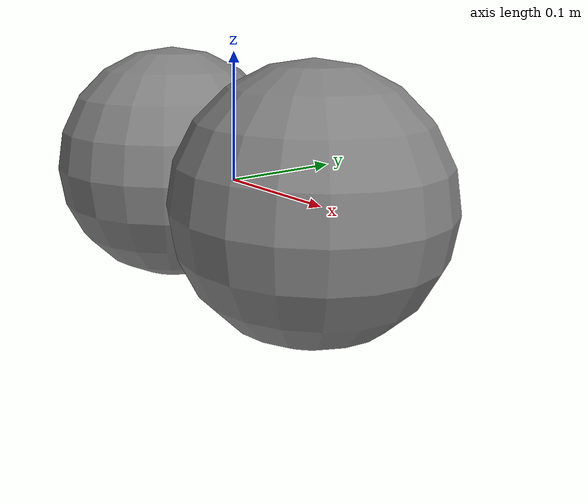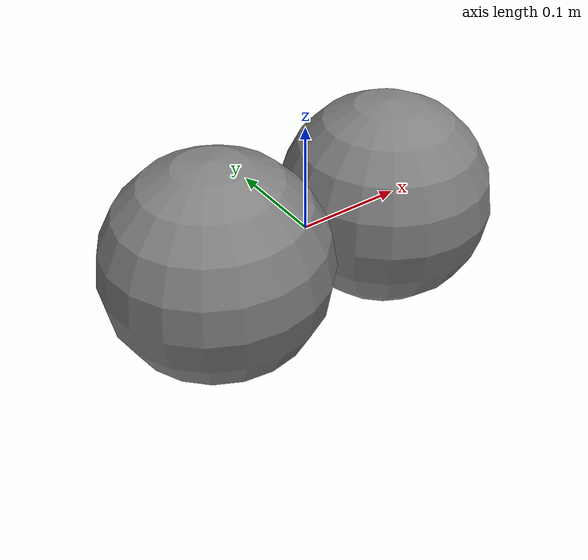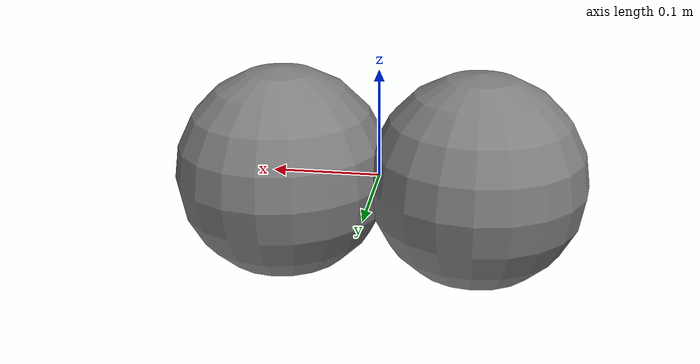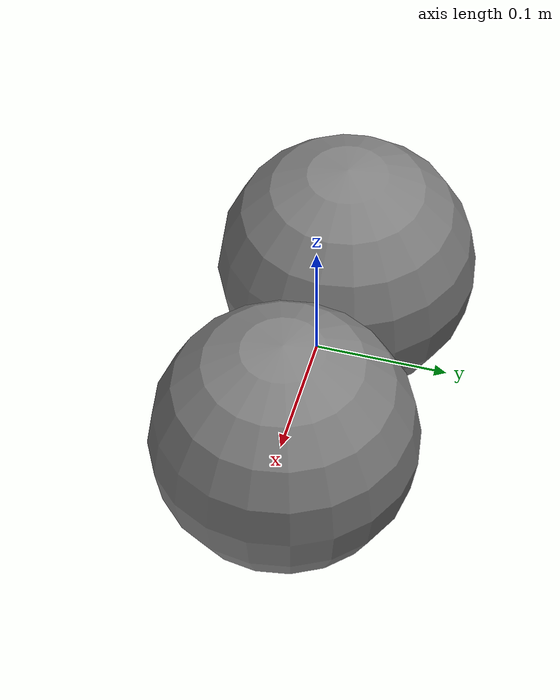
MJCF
<mujoco model="override_ignores_priority">
        <option gravity="0 0 0" timestep="0.002"/>
        <worldbody>
            <body name="a" pos="-0.09 0 0">
                <freejoint name="a_free"/>
                <geom type="sphere" size="0.1" mass="1.0"
                      priority="5" friction="0.1 0.1 0.001"
                      solref="0.01 0.5" solmix="1.0"/>
            </body>
            <body name="b" pos="0.09 0 0">
                <freejoint name="b_free"/>
                <geom type="sphere" size="0.1" mass="1.0"
                      priority="0" friction="0.9 0.9 0.05"
                      solref="0.08 1.5" solmix="1.0"/>
            </body>
        </worldbody>
    </mujoco>
